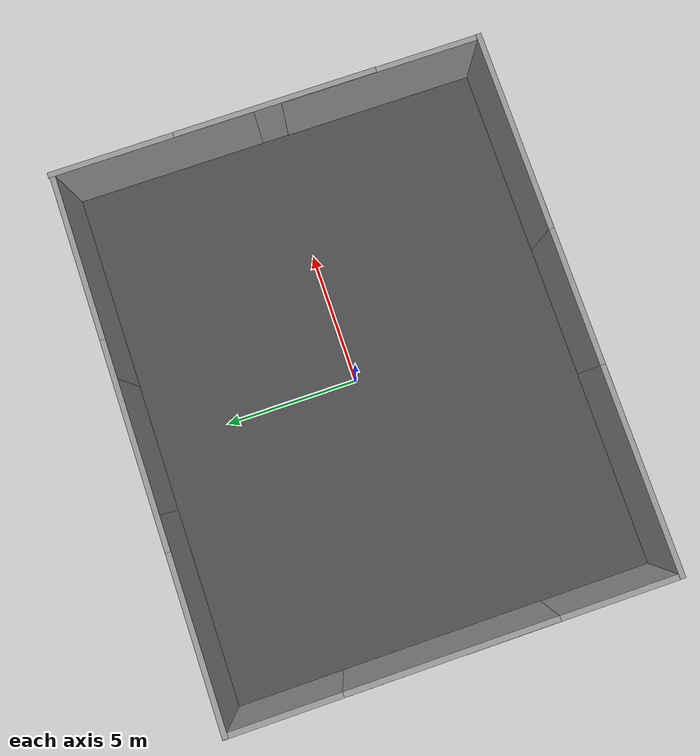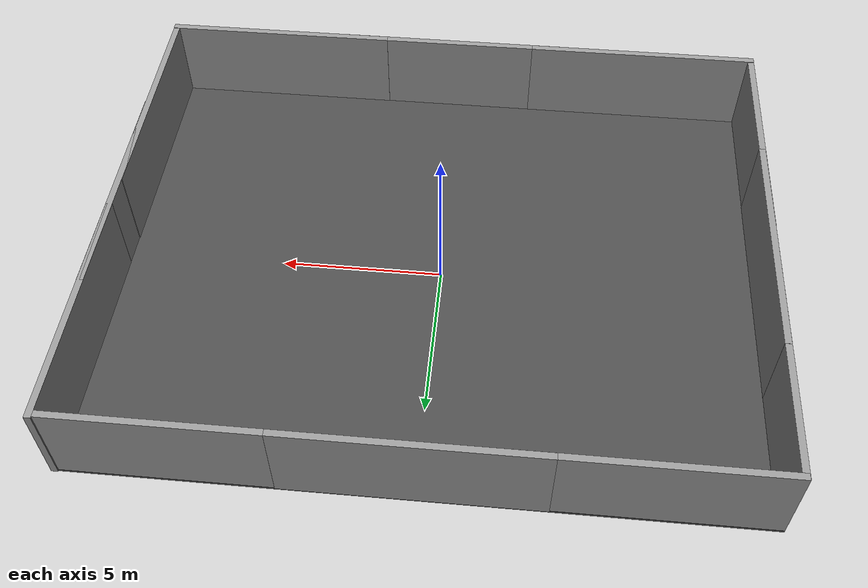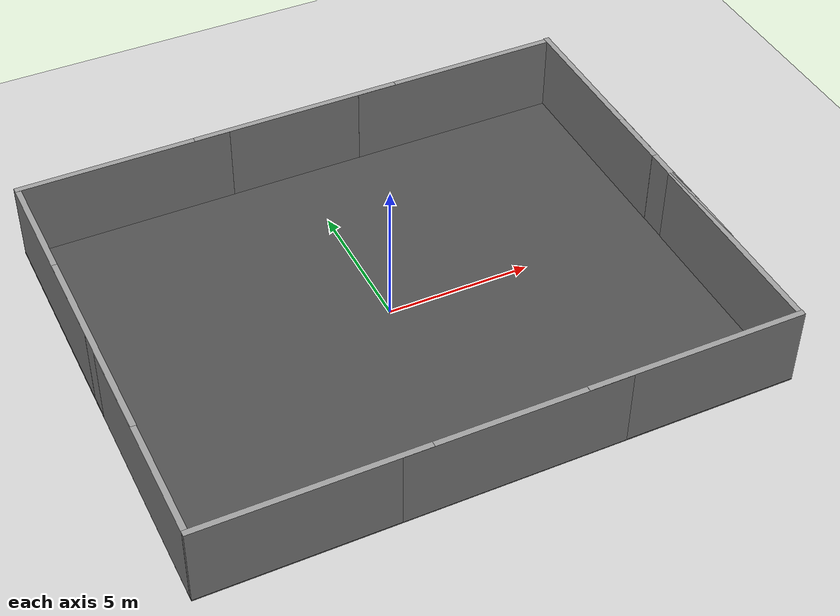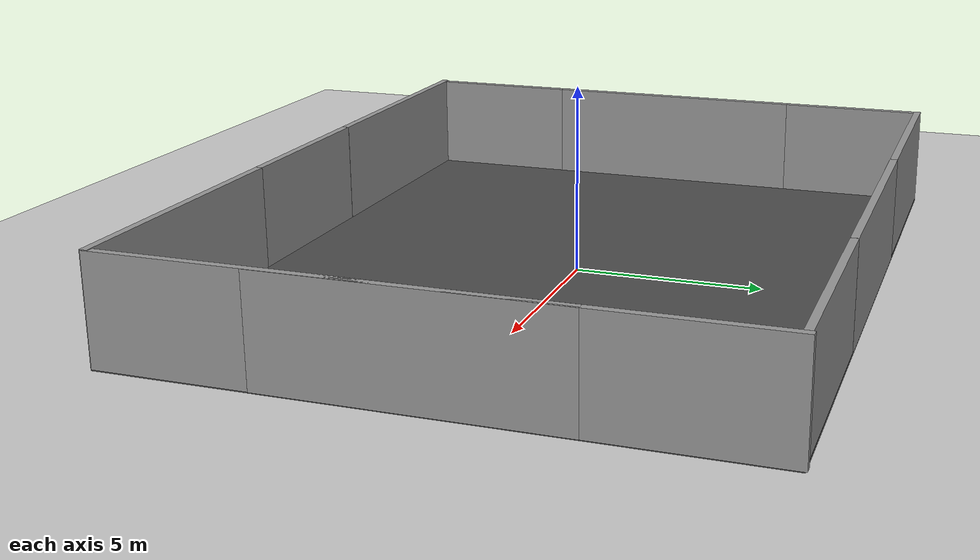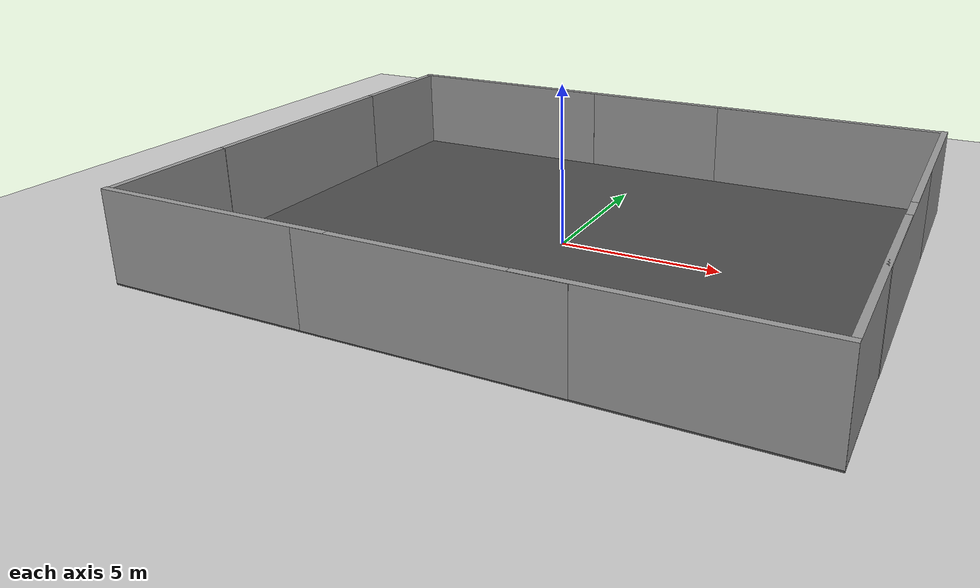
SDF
<sdf version="1.4">
 <world name="default">
  <light name="sun" type="directional">
   <pose>0 0 10 0 -0 0</pose>
   <diffuse>0.8 0.8 0.8 1</diffuse>
   <specular>0.2 0.2 0.2 1</specular>
   <attenuation>
    <range>1000</range>
    <constant>0.9</constant>
    <linear>0.01</linear>
    <quadratic>0.001</quadratic>
   </attenuation>
   <direction>-0.5 0.1 -0.9</direction>
  </light>
  <model name="ground_plane">
   <static>1</static>
   <link name="link">
    <collision name="collision">
     <geometry><plane><normal>0 0 1</normal><size>40 40</size></plane></geometry>
     <surface><friction><ode><mu>100</mu><mu2>50</mu2></ode></friction></surface>
    </collision>
    <visual name="visual">
     <cast_shadows>0</cast_shadows>
     <geometry><plane><normal>0 0 1</normal><size>40 40</size></plane></geometry>
     <material>
      <script><uri>file://media/materials/scripts/gazebo.material</uri><name>Gazebo/Grey</name></script>
     </material>
    </visual>
    <velocity_decay><linear>0</linear><angular>0</angular></velocity_decay>
   </link>
  </model>
  <physics type="ode">
   <max_step_size>0.01</max_step_size>
   <real_time_factor>1</real_time_factor>
   <real_time_update_rate>100</real_time_update_rate>
   <gravity>0 0 -9.8</gravity>
  </physics>
  <scene><ambient>0.4 0.4 0.4 1</ambient><background>0.7 0.7 0.7 1</background><shadows>1</shadows></scene>
  <model name="asphalt_plane">
   <static>1</static>
   <link name="link">
    <collision name="collision"><geometry><box><size>20 16 0.1</size></box></geometry></collision>
    <visual name="visual">
     <cast_shadows>0</cast_shadows>
     <geometry><box><size>20 16 0.1</size></box></geometry>
     <material>
      <script>
       <uri>model://asphalt_plane/materials/scripts</uri>
       <uri>model://asphalt_plane/materials/textures</uri>
       <name>vrc/asphalt</name>
      </script>
     </material>
    </visual>
    <velocity_decay><linear>0</linear><angular>0</angular></velocity_decay>
   </link>
   <pose>0.076733 -0.110379 0 0 -0 0</pose>
  </model>
  <spherical_coordinates>
   <surface_model>EARTH_WGS84</surface_model>
   <latitude_deg>0</latitude_deg>
   <longitude_deg>0</longitude_deg>
   <elevation>0</elevation>
   <heading_deg>0</heading_deg>
  </spherical_coordinates>
  <model name="grey_wall">
   <static>1</static>
   <link name="link">
    <pose>0 0 1.4 0 -0 0</pose>
    <collision name="collision"><geometry><box><size>7.5 0.2 2.8</size></box></geometry></collision>
    <visual name="visual">
     <cast_shadows>0</cast_shadows>
     <geometry><box><size>7.5 0.2 2.8</size></box></geometry>
     <material>
      <script>
       <uri>model://grey_wall/materials/scripts</uri>
       <uri>model://grey_wall/materials/textures</uri>
       <name>vrc/grey_wall</name>
      </script>
     </material>
    </visual>
    <velocity_decay><linear>0</linear><angular>0</angular></velocity_decay>
   </link>
   <pose>6.1438 7.78839 0 0 -0 0</pose>
  </model>
  <model name="grey_wall_0">
   <static>1</static>
   <link name="link">
    <pose>0 0 1.4 0 -0 0</pose>
    <collision name="collision"><geometry><box><size>7.5 0.2 2.8</size></box></geometry></collision>
    <visual name="visual">
     <cast_shadows>0</cast_shadows>
     <geometry><box><size>7.5 0.2 2.8</size></box></geometry>
     <material>
      <script>
       <uri>model://grey_wall/materials/scripts</uri>
       <uri>model://grey_wall/materials/textures</uri>
       <name>vrc/grey_wall</name>
      </script>
     </material>
    </visual>
    <velocity_decay><linear>0</linear><angular>0</angular></velocity_decay>
   </link>
   <pose>-6.16364 7.78561 0.00229 0 -0 0</pose>
  </model>
  <model name="grey_wall_1">
   <static>1</static>
   <link name="link">
    <pose>0 0 1.4 0 -0 0</pose>
    <collision name="collision"><geometry><box><size>7.5 0.2 2.8</size></box></geometry></collision>
    <visual name="visual">
     <cast_shadows>0</cast_shadows>
     <geometry><box><size>7.5 0.2 2.8</size></box></geometry>
     <material>
      <script>
       <uri>model://grey_wall/materials/scripts</uri>
       <uri>model://grey_wall/materials/textures</uri>
       <name>vrc/grey_wall</name>
      </script>
     </material>
    </visual>
    <velocity_decay><linear>0</linear><angular>0</angular></velocity_decay>
   </link>
   <pose>0.086404 7.78998 0.00264 0 -0 0</pose>
  </model>
  <model name="grey_wall_2">
   <static>1</static>
   <link name="link">
    <pose>0 0 1.4 0 -0 0</pose>
    <collision name="collision"><geometry><box><size>7.5 0.2 2.8</size></box></geometry></collision>
    <visual name="visual">
     <cast_shadows>0</cast_shadows>
     <geometry><box><size>7.5 0.2 2.8</size></box></geometry>
     <material>
      <script>
       <uri>model://grey_wall/materials/scripts</uri>
       <uri>model://grey_wall/materials/textures</uri>
       <name>vrc/grey_wall</name>
      </script>
     </material>
    </visual>
    <velocity_decay><linear>0</linear><angular>0</angular></velocity_decay>
   </link>
   <pose>-9.8212 4.13362 0.00061 0 0 -1.57047</pose>
  </model>
  <model name="grey_wall_3">
   <static>1</static>
   <link name="link">
    <pose>0 0 1.4 0 -0 0</pose>
    <collision name="collision"><geometry><box><size>7.5 0.2 2.8</size></box></geometry></collision>
    <visual name="visual">
     <cast_shadows>0</cast_shadows>
     <geometry><box><size>7.5 0.2 2.8</size></box></geometry>
     <material>
      <script>
       <uri>model://grey_wall/materials/scripts</uri>
       <uri>model://grey_wall/materials/textures</uri>
       <name>vrc/grey_wall</name>
      </script>
     </material>
    </visual>
    <velocity_decay><linear>0</linear><angular>0</angular></velocity_decay>
   </link>
   <pose>-6.17319 -8.0136 0.0177 0 -0 0</pose>
  </model>
  <model name="grey_wall_4">
   <static>1</static>
   <link name="link">
    <pose>0 0 1.4 0 -0 0</pose>
    <collision name="collision"><geometry><box><size>7.5 0.2 2.8</size></box></geometry></collision>
    <visual name="visual">
     <cast_shadows>0</cast_shadows>
     <geometry><box><size>7.5 0.2 2.8</size></box></geometry>
     <material>
      <script>
       <uri>model://grey_wall/materials/scripts</uri>
       <uri>model://grey_wall/materials/textures</uri>
       <name>vrc/grey_wall</name>
      </script>
     </material>
    </visual>
    <velocity_decay><linear>0</linear><angular>0</angular></velocity_decay>
   </link>
   <pose>6.32638 -8.01144 0.0195 0 -0 0</pose>
  </model>
  <model name="grey_wall_5">
   <static>1</static>
   <link name="link">
    <pose>0 0 1.4 0 -0 0</pose>
    <collision name="collision"><geometry><box><size>7.5 0.2 2.8</size></box></geometry></collision>
    <visual name="visual">
     <cast_shadows>0</cast_shadows>
     <geometry><box><size>7.5 0.2 2.8</size></box></geometry>
     <material>
      <script>
       <uri>model://grey_wall/materials/scripts</uri>
       <uri>model://grey_wall/materials/textures</uri>
       <name>vrc/grey_wall</name>
      </script>
     </material>
    </visual>
    <velocity_decay><linear>0</linear><angular>0</angular></velocity_decay>
   </link>
   <pose>0.329038 -8.01759 0.01635 0 -0 0</pose>
  </model>
  <model name="grey_wall_6">
   <static>1</static>
   <link name="link">
    <pose>0 0 1.4 0 -0 0</pose>
    <collision name="collision"><geometry><box><size>7.5 0.2 2.8</size></box></geometry></collision>
    <visual name="visual">
     <cast_shadows>0</cast_shadows>
     <geometry><box><size>7.5 0.2 2.8</size></box></geometry>
     <material>
      <script>
       <uri>model://grey_wall/materials/scripts</uri>
       <uri>model://grey_wall/materials/textures</uri>
       <name>vrc/grey_wall</name>
      </script>
     </material>
    </visual>
    <velocity_decay><linear>0</linear><angular>0</angular></velocity_decay>
   </link>
   <pose>-9.82715 -4.22543 0 0 0 -1.5708</pose>
  </model>
  <model name="grey_wall_7">
   <static>1</static>
   <link name="link">
    <pose>0 0 1.4 0 -0 0</pose>
    <collision name="collision"><geometry><box><size>7.5 0.2 2.8</size></box></geometry></collision>
    <visual name="visual">
     <cast_shadows>0</cast_shadows>
     <geometry><box><size>7.5 0.2 2.8</size></box></geometry>
     <material>
      <script>
       <uri>model://grey_wall/materials/scripts</uri>
       <uri>model://grey_wall/materials/textures</uri>
       <name>vrc/grey_wall</name>
      </script>
     </material>
    </visual>
    <velocity_decay><linear>0</linear><angular>0</angular></velocity_decay>
   </link>
   <pose>9.97691 -4.34724 0 0 0 -1.5708</pose>
  </model>
  <model name="grey_wall_8">
   <static>1</static>
   <link name="link">
    <pose>0 0 1.4 0 -0 0</pose>
    <collision name="collision"><geometry><box><size>7.5 0.2 2.8</size></box></geometry></collision>
    <visual name="visual">
     <cast_shadows>0</cast_shadows>
     <geometry><box><size>7.5 0.2 2.8</size></box></geometry>
     <material>
      <script>
       <uri>model://grey_wall/materials/scripts</uri>
       <uri>model://grey_wall/materials/textures</uri>
       <name>vrc/grey_wall</name>
      </script>
     </material>
    </visual>
    <velocity_decay><linear>0</linear><angular>0</angular></velocity_decay>
   </link>
   <pose>9.98762 4.17835 0 0 0 -1.5708</pose>
  </model>
  <model name="grey_wall_9">
   <static>1</static>
   <link name="link">
    <pose>0 0 1.4 0 -0 0</pose>
    <collision name="collision"><geometry><box><size>7.5 0.2 2.8</size></box></geometry></collision>
    <visual name="visual">
     <cast_shadows>0</cast_shadows>
     <geometry><box><size>7.5 0.2 2.8</size></box></geometry>
     <material>
      <script>
       <uri>model://grey_wall/materials/scripts</uri>
       <uri>model://grey_wall/materials/textures</uri>
       <name>vrc/grey_wall</name>
      </script>
     </material>
    </visual>
    <velocity_decay><linear>0</linear><angular>0</angular></velocity_decay>
   </link>
   <pose>-9.81832 -1e-06 0.0038 0 0 -1.5708</pose>
  </model>
  <model name="grey_wall_10">
   <static>1</static>
   <link name="link">
    <pose>0 0 1.4 0 -0 0</pose>
    <collision name="collision"><geometry><box><size>7.5 0.2 2.8</size></box></geometry></collision>
    <visual name="visual">
     <cast_shadows>0</cast_shadows>
     <geometry><box><size>7.5 0.2 2.8</size></box></geometry>
     <material>
      <script>
       <uri>model://grey_wall/materials/scripts</uri>
       <uri>model://grey_wall/materials/textures</uri>
       <name>vrc/grey_wall</name>
      </script>
     </material>
    </visual>
    <velocity_decay><linear>0</linear><angular>0</angular></velocity_decay>
   </link>
   <pose>9.99257 -0.392164 0 0 0 -1.5708</pose>
  </model>
 </world>
</sdf>
